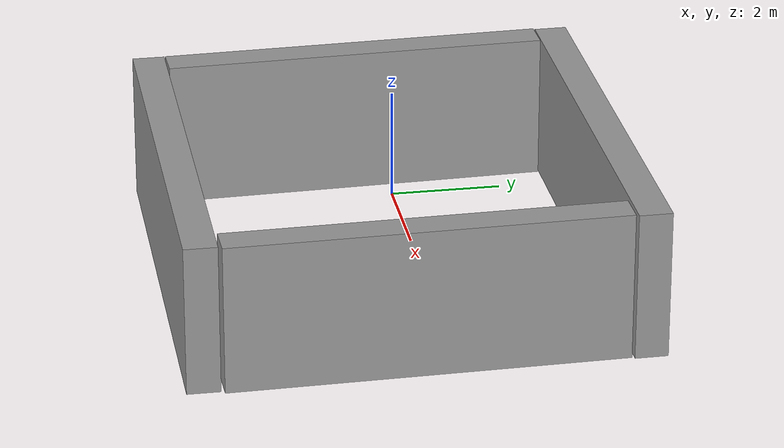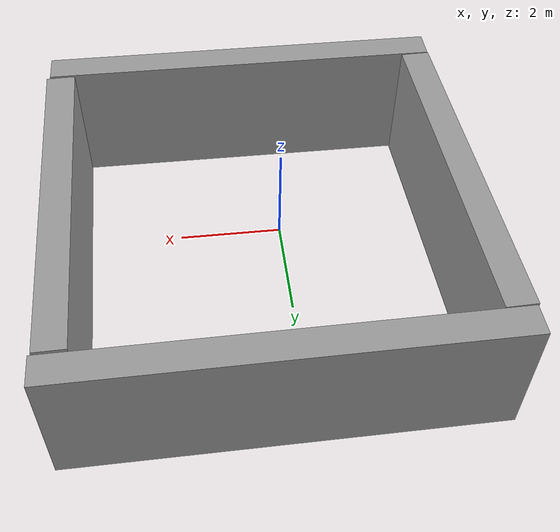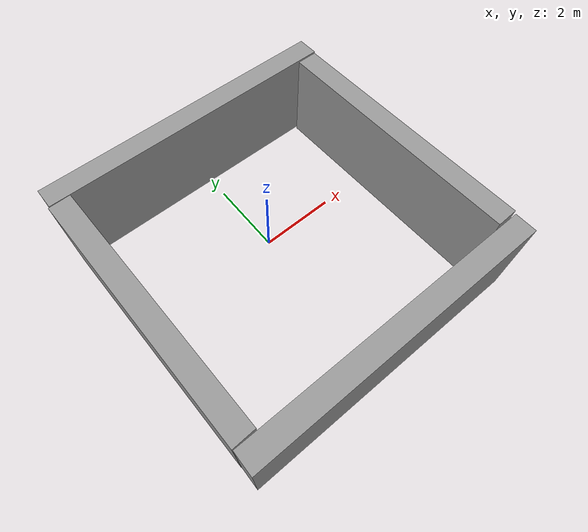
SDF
<sdf version="1.5">
 <world name="default">
  <include><uri>model://sun</uri></include>
  <include><uri>model://cage</uri><pose>1.5 0 0 0 0 0</pose></include>
  <plugin name="step_world" filename="libstep_world.so"/>
 </world>
</sdf>

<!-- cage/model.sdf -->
<sdf version='1.6'>
  <model name='cage'>
    <link name='wall_4'>
      <inertial>
        <mass>50.4512</mass>
        <inertia>
          <ixx>33.5852</ixx>
          <ixy>0</ixy>
          <ixz>0</ixz>
          <iyy>247.661</iyy>
          <iyz>0</iyz>
          <izz>217.106</izz>
        </inertia>
        <pose frame=''>0 0 0 0 -0 0</pose>
      </inertial>
      <pose frame=''>-5.10436 -0.115673 0.031249 0 0 -1.54575</pose>
      <gravity>1</gravity>
      <self_collide>0</self_collide>
      <kinematic>0</kinematic>
      <enable_wind>0</enable_wind>
      <visual name='visual'>
        <pose frame=''>0 0 0 0 -0 0</pose>
        <geometry>
          <box>
            <size>7.16094 0.600284 2.76189</size>
          </box>
        </geometry>
        <material>
          <lighting>1</lighting>
          <script>
            <uri>file://media/materials/scripts/gazebo.material</uri>
            <name>Gazebo/Grey</name>
          </script>
          <shader type='pixel'>
            <normal_map>__default__</normal_map>
          </shader>
          <ambient>0.3 0.3 0.3 1</ambient>
          <diffuse>0.7 0.7 0.7 1</diffuse>
          <specular>0.01 0.01 0.01 1</specular>
          <emissive>0 0 0 1</emissive>
        </material>
        <transparency>0</transparency>
        <cast_shadows>1</cast_shadows>
      </visual>
      <collision name='collision'>
        <laser_retro>0</laser_retro>
        <max_contacts>10</max_contacts>
        <pose frame=''>0 0 0 0 -0 0</pose>
        <geometry>
          <box>
            <size>7.16094 0.600284 2.76189</size>
          </box>
        </geometry>
        <surface>
          <friction>
            <ode>
              <mu>1</mu>
              <mu2>1</mu2>
              <fdir1>0 0 0</fdir1>
              <slip1>0</slip1>
              <slip2>0</slip2>
            </ode>
            <torsional>
              <coefficient>1</coefficient>
              <patch_radius>0</patch_radius>
              <surface_radius>0</surface_radius>
              <use_patch_radius>1</use_patch_radius>
              <ode>
                <slip>0</slip>
              </ode>
            </torsional>
          </friction>
          <bounce>
            <restitution_coefficient>0</restitution_coefficient>
            <threshold>1e+06</threshold>
          </bounce>
          <contact>
            <collide_without_contact>0</collide_without_contact>
            <collide_without_contact_bitmask>1</collide_without_contact_bitmask>
            <collide_bitmask>1</collide_bitmask>
            <ode>
              <soft_cfm>0</soft_cfm>
              <soft_erp>0.2</soft_erp>
              <kp>1e+13</kp>
              <kd>1</kd>
              <max_vel>0.01</max_vel>
              <min_depth>0</min_depth>
            </ode>
            <bullet>
              <split_impulse>1</split_impulse>
              <split_impulse_penetration_threshold>-0.01</split_impulse_penetration_threshold>
              <soft_cfm>0</soft_cfm>
              <soft_erp>0.2</soft_erp>
              <kp>1e+13</kp>
              <kd>1</kd>
            </bullet>
          </contact>
        </surface>
      </collision>
    </link>
    <link name='wall_4_clone'>
      <inertial>
        <mass>50.5624</mass>
        <inertia>
          <ixx>33.6593</ixx>
          <ixy>0</ixy>
          <ixz>0</ixz>
          <iyy>250.263</iyy>
          <iyz>0</iyz>
          <izz>219.64</izz>
        </inertia>
        <pose frame=''>0 0 0 0 -0 0</pose>
      </inertial>
      <pose frame=''>2.79519 -0.11245 0.031133 -4.1e-05 1.4e-05 -1.55537</pose>
      <gravity>1</gravity>
      <self_collide>0</self_collide>
      <kinematic>0</kinematic>
      <enable_wind>0</enable_wind>
      <visual name='visual'>
        <pose frame=''>0 0 0 0 -0 0</pose>
        <geometry>
          <box>
            <size>7.19492 0.600284 2.76189</size>
          </box>
        </geometry>
        <material>
          <lighting>1</lighting>
          <script>
            <uri>file://media/materials/scripts/gazebo.material</uri>
            <name>Gazebo/Grey</name>
          </script>
          <shader type='pixel'>
            <normal_map>__default__</normal_map>
          </shader>
        </material>
        <transparency>0</transparency>
        <cast_shadows>1</cast_shadows>
      </visual>
      <collision name='collision'>
        <laser_retro>0</laser_retro>
        <max_contacts>10</max_contacts>
        <pose frame=''>0 0 0 0 -0 0</pose>
        <geometry>
          <box>
            <size>7.19492 0.600284 2.76189</size>
          </box>
        </geometry>
        <surface>
          <friction>
            <ode>
              <mu>1</mu>
              <mu2>1</mu2>
              <fdir1>0 0 0</fdir1>
              <slip1>0</slip1>
              <slip2>0</slip2>
            </ode>
            <torsional>
              <coefficient>1</coefficient>
              <patch_radius>0</patch_radius>
              <surface_radius>0</surface_radius>
              <use_patch_radius>1</use_patch_radius>
              <ode>
                <slip>0</slip>
              </ode>
            </torsional>
          </friction>
          <bounce>
            <restitution_coefficient>0</restitution_coefficient>
            <threshold>1e+06</threshold>
          </bounce>
          <contact>
            <collide_without_contact>0</collide_without_contact>
            <collide_without_contact_bitmask>1</collide_without_contact_bitmask>
            <collide_bitmask>1</collide_bitmask>
            <ode>
              <soft_cfm>0</soft_cfm>
              <soft_erp>0.2</soft_erp>
              <kp>1e+13</kp>
              <kd>1</kd>
              <max_vel>0.01</max_vel>
              <min_depth>0</min_depth>
            </ode>
            <bullet>
              <split_impulse>1</split_impulse>
              <split_impulse_penetration_threshold>-0.01</split_impulse_penetration_threshold>
              <soft_cfm>0</soft_cfm>
              <soft_erp>0.2</soft_erp>
              <kp>1e+13</kp>
              <kd>1</kd>
            </bullet>
          </contact>
        </surface>
      </collision>
    </link>
    <link name='wall_4_clone_0'>
      <inertial>
        <mass>50.4732</mass>
        <inertia>
          <ixx>33.5999</ixx>
          <ixy>0</ixy>
          <ixz>0</ixz>
          <iyy>328.097</iyy>
          <iyz>0</iyz>
          <izz>297.528</izz>
        </inertia>
        <pose frame=''>0 0 0 0 -0 0</pose>
      </inertial>
      <pose frame=''>-1.11143 -4.04431 0.031241 -1.3e-05 -4.1e-05 3.13636</pose>
      <gravity>1</gravity>
      <self_collide>0</self_collide>
      <kinematic>0</kinematic>
      <enable_wind>0</enable_wind>
      <visual name='visual'>
        <pose frame=''>0 0 0 0 -0 0</pose>
        <geometry>
          <box>
            <size>8.38909 0.600284 2.76189</size>
          </box>
        </geometry>
        <material>
          <lighting>1</lighting>
          <script>
            <uri>file://media/materials/scripts/gazebo.material</uri>
            <name>Gazebo/Grey</name>
          </script>
          <shader type='pixel'>
            <normal_map>__default__</normal_map>
          </shader>
          <ambient>0.3 0.3 0.3 1</ambient>
          <diffuse>0.7 0.7 0.7 1</diffuse>
          <specular>0.01 0.01 0.01 1</specular>
          <emissive>0 0 0 1</emissive>
        </material>
        <transparency>0</transparency>
        <cast_shadows>1</cast_shadows>
      </visual>
      <collision name='collision'>
        <laser_retro>0</laser_retro>
        <max_contacts>10</max_contacts>
        <pose frame=''>0 0 0 0 -0 0</pose>
        <geometry>
          <box>
            <size>8.38909 0.600284 2.76189</size>
          </box>
        </geometry>
        <surface>
          <friction>
            <ode>
              <mu>1</mu>
              <mu2>1</mu2>
              <fdir1>0 0 0</fdir1>
              <slip1>0</slip1>
              <slip2>0</slip2>
            </ode>
            <torsional>
              <coefficient>1</coefficient>
              <patch_radius>0</patch_radius>
              <surface_radius>0</surface_radius>
              <use_patch_radius>1</use_patch_radius>
              <ode>
                <slip>0</slip>
              </ode>
            </torsional>
          </friction>
          <bounce>
            <restitution_coefficient>0</restitution_coefficient>
            <threshold>1e+06</threshold>
          </bounce>
          <contact>
            <collide_without_contact>0</collide_without_contact>
            <collide_without_contact_bitmask>1</collide_without_contact_bitmask>
            <collide_bitmask>1</collide_bitmask>
            <ode>
              <soft_cfm>0</soft_cfm>
              <soft_erp>0.2</soft_erp>
              <kp>1e+13</kp>
              <kd>1</kd>
              <max_vel>0.01</max_vel>
              <min_depth>0</min_depth>
            </ode>
            <bullet>
              <split_impulse>1</split_impulse>
              <split_impulse_penetration_threshold>-0.01</split_impulse_penetration_threshold>
              <soft_cfm>0</soft_cfm>
              <soft_erp>0.2</soft_erp>
              <kp>1e+13</kp>
              <kd>1</kd>
            </bullet>
          </contact>
        </surface>
      </collision>
    </link>
    <link name='wall_4_clone_1'>
      <inertial>
        <mass>50.9603</mass>
        <inertia>
          <ixx>33.9242</ixx>
          <ixy>0</ixy>
          <ixz>0</ixz>
          <iyy>341.954</iyy>
          <iyz>0</iyz>
          <izz>311.09</izz>
        </inertia>
        <pose frame=''>0 0 0 0 -0 0</pose>
      </inertial>
      <pose frame=''>-1.18868 3.80872 0.031347 1.3e-05 4.1e-05 0.006116</pose>
      <gravity>1</gravity>
      <self_collide>0</self_collide>
      <kinematic>0</kinematic>
      <enable_wind>0</enable_wind>
      <visual name='visual'>
        <pose frame=''>0 0 0 0 -0 0</pose>
        <geometry>
          <box>
            <size>8.53782 0.600284 2.76189</size>
          </box>
        </geometry>
        <material>
          <lighting>1</lighting>
          <script>
            <uri>file://media/materials/scripts/gazebo.material</uri>
            <name>Gazebo/Grey</name>
          </script>
          <shader type='pixel'>
            <normal_map>__default__</normal_map>
          </shader>
        </material>
        <transparency>0</transparency>
        <cast_shadows>1</cast_shadows>
      </visual>
      <collision name='collision'>
        <laser_retro>0</laser_retro>
        <max_contacts>10</max_contacts>
        <pose frame=''>0 0 0 0 -0 0</pose>
        <geometry>
          <box>
            <size>8.53782 0.600284 2.76189</size>
          </box>
        </geometry>
        <surface>
          <friction>
            <ode>
              <mu>1</mu>
              <mu2>1</mu2>
              <fdir1>0 0 0</fdir1>
              <slip1>0</slip1>
              <slip2>0</slip2>
            </ode>
            <torsional>
              <coefficient>1</coefficient>
              <patch_radius>0</patch_radius>
              <surface_radius>0</surface_radius>
              <use_patch_radius>1</use_patch_radius>
              <ode>
                <slip>0</slip>
              </ode>
            </torsional>
          </friction>
          <bounce>
            <restitution_coefficient>0</restitution_coefficient>
            <threshold>1e+06</threshold>
          </bounce>
          <contact>
            <collide_without_contact>0</collide_without_contact>
            <collide_without_contact_bitmask>1</collide_without_contact_bitmask>
            <collide_bitmask>1</collide_bitmask>
            <ode>
              <soft_cfm>0</soft_cfm>
              <soft_erp>0.2</soft_erp>
              <kp>1e+13</kp>
              <kd>1</kd>
              <max_vel>0.01</max_vel>
              <min_depth>0</min_depth>
            </ode>
            <bullet>
              <split_impulse>1</split_impulse>
              <split_impulse_penetration_threshold>-0.01</split_impulse_penetration_threshold>
              <soft_cfm>0</soft_cfm>
              <soft_erp>0.2</soft_erp>
              <kp>1e+13</kp>
              <kd>1</kd>
            </bullet>
          </contact>
        </surface>
      </collision>
    </link>
    <static>0</static>
    <allow_auto_disable>1</allow_auto_disable>
  </model>
</sdf>
